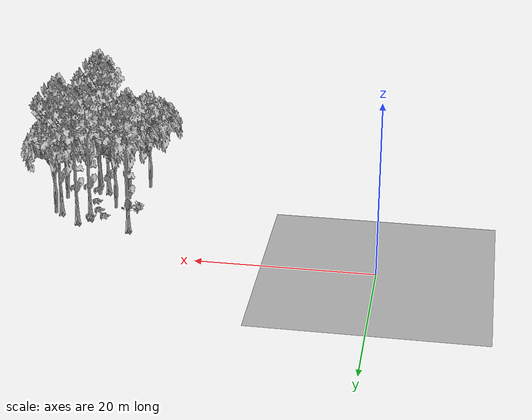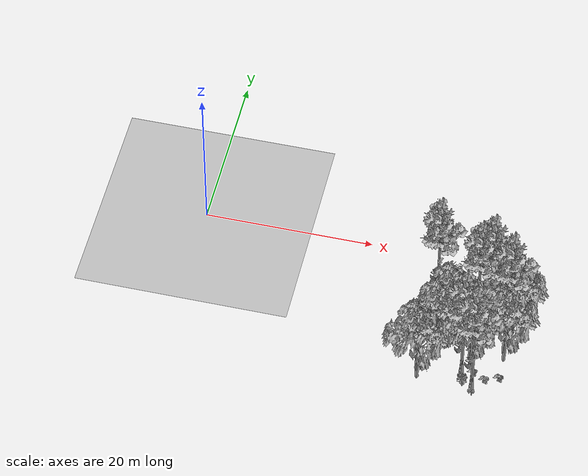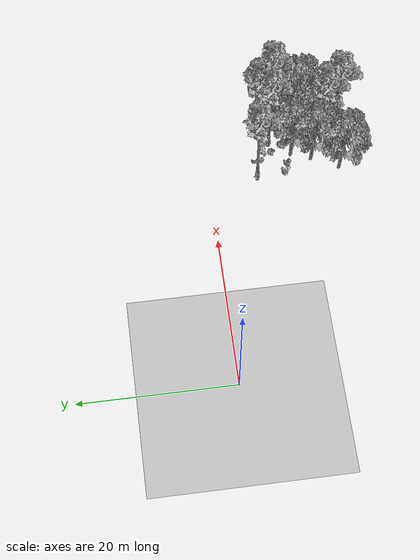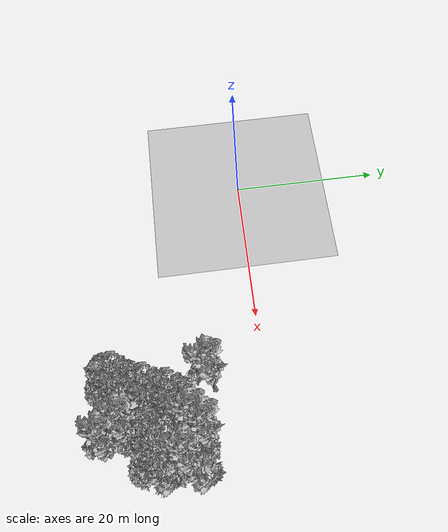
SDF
<sdf version="1.7">
 <world name="default">
  <model name="ground_plane">
   <static>1</static>
   <link name="link">
    <collision name="collision">
     <pose>-50 0 0 0 -0 0</pose>
     <geometry><plane><normal>0 0 1</normal><size>80 80</size></plane></geometry>
     <surface><contact><ode><min_depth>0.01</min_depth><max_vel>0</max_vel></ode></contact></surface>
    </collision>
    <visual name="grass">
     <cast_shadows>0</cast_shadows>
     <geometry>
      <mesh>
       <scale>0.46714285714285714 0.46714285714285714 0.1</scale>
       <uri>file://grass_plane/meshes/grass_plane.dae</uri>
      </mesh>
     </geometry>
    </visual>
   </link>
  </model>
  <model name="Tree 23">
   <static>1</static>
   <pose>35.221146484826804 -17.699953607041667 0 1.57079 -0 0</pose>
   <link name="link">
    <collision name="collision">
     <geometry><mesh><scale>3.5 5 3.5</scale><uri>model://tree_9/meshes/tree_9.obj</uri></mesh></geometry>
    </collision>
    <visual name="visual">
     <geometry><mesh><scale>3.5 5 3.5</scale><uri>model://tree_9/meshes/tree_9.obj</uri></mesh></geometry>
    </visual>
   </link>
  </model>
  <model name="Tree 33">
   <static>1</static>
   <pose>33.70613209654823 -15.851848451742086 0 1.57079 -0 0</pose>
   <link name="link">
    <collision name="collision">
     <geometry><mesh><scale>3.5 5 3.5</scale><uri>model://tree_9/meshes/tree_9.obj</uri></mesh></geometry>
    </collision>
    <visual name="visual">
     <geometry><mesh><scale>3.5 5 3.5</scale><uri>model://tree_9/meshes/tree_9.obj</uri></mesh></geometry>
    </visual>
   </link>
  </model>
  <model name="Tree 38">
   <static>1</static>
   <pose>30.601486647155355 -13.957409782659724 0 1.57079 -0 0</pose>
   <link name="link">
    <collision name="collision">
     <geometry><mesh><scale>3.5 5 3.5</scale><uri>model://tree_2/meshes/tree_2.obj</uri></mesh></geometry>
    </collision>
    <visual name="visual">
     <geometry><mesh><scale>3.5 5 3.5</scale><uri>model://tree_2/meshes/tree_2.obj</uri></mesh></geometry>
    </visual>
   </link>
  </model>
  <model name="Tree 142">
   <static>1</static>
   <pose>34.080236983721264 -8.682986408394527 0 1.57079 -0 0</pose>
   <link name="link">
    <collision name="collision">
     <geometry><mesh><scale>3.5 5 3.5</scale><uri>model://tree_9/meshes/tree_9.obj</uri></mesh></geometry>
    </collision>
    <visual name="visual">
     <geometry><mesh><scale>3.5 5 3.5</scale><uri>model://tree_9/meshes/tree_9.obj</uri></mesh></geometry>
    </visual>
   </link>
  </model>
  <model name="Tree 155">
   <static>1</static>
   <pose>35.293229303188156 -7.474615139393002 0 1.57079 -0 0</pose>
   <link name="link">
    <collision name="collision">
     <geometry><mesh><scale>3.5 5 3.5</scale><uri>model://tree_9/meshes/tree_9.obj</uri></mesh></geometry>
    </collision>
    <visual name="visual">
     <geometry><mesh><scale>3.5 5 3.5</scale><uri>model://tree_9/meshes/tree_9.obj</uri></mesh></geometry>
    </visual>
   </link>
  </model>
  <model name="Tree 299">
   <static>1</static>
   <pose>31.583565709617787 -11.35100876882192 0 1.57079 -0 0</pose>
   <link name="link">
    <collision name="collision">
     <geometry><mesh><scale>3.5 5 3.5</scale><uri>model://tree_2/meshes/tree_2.obj</uri></mesh></geometry>
    </collision>
    <visual name="visual">
     <geometry><mesh><scale>3.5 5 3.5</scale><uri>model://tree_2/meshes/tree_2.obj</uri></mesh></geometry>
    </visual>
   </link>
  </model>
  <model name="Tree 304">
   <static>1</static>
   <pose>38.191930301366384 -9.009848890088172 0 1.57079 -0 0</pose>
   <link name="link">
    <collision name="collision">
     <geometry><mesh><scale>3.5 5 3.5</scale><uri>model://tree_2/meshes/tree_2.obj</uri></mesh></geometry>
    </collision>
    <visual name="visual">
     <geometry><mesh><scale>3.5 5 3.5</scale><uri>model://tree_2/meshes/tree_2.obj</uri></mesh></geometry>
    </visual>
   </link>
  </model>
  <model name="Tree 399">
   <static>1</static>
   <pose>37.77106093558325 -9.50035511624258 0 1.57079 -0 0</pose>
   <link name="link">
    <collision name="collision">
     <geometry><mesh><scale>3.5 5 3.5</scale><uri>model://tree_9/meshes/tree_9.obj</uri></mesh></geometry>
    </collision>
    <visual name="visual">
     <geometry><mesh><scale>3.5 5 3.5</scale><uri>model://tree_9/meshes/tree_9.obj</uri></mesh></geometry>
    </visual>
   </link>
  </model>
  <model name="Tree 405">
   <static>1</static>
   <pose>37.92757929693791 -12.962336499677587 0 1.57079 -0 0</pose>
   <link name="link">
    <collision name="collision">
     <geometry><mesh><scale>3.5 5 3.5</scale><uri>model://tree_2/meshes/tree_2.obj</uri></mesh></geometry>
    </collision>
    <visual name="visual">
     <geometry><mesh><scale>3.5 5 3.5</scale><uri>model://tree_2/meshes/tree_2.obj</uri></mesh></geometry>
    </visual>
   </link>
  </model>
  <model name="Tree 577">
   <static>1</static>
   <pose>28.81396044457361 -17.463019854190716 0 1.57079 -0 0</pose>
   <link name="link">
    <collision name="collision">
     <geometry><mesh><scale>3.5 5 3.5</scale><uri>model://tree_2/meshes/tree_2.obj</uri></mesh></geometry>
    </collision>
    <visual name="visual">
     <geometry><mesh><scale>3.5 5 3.5</scale><uri>model://tree_2/meshes/tree_2.obj</uri></mesh></geometry>
    </visual>
   </link>
  </model>
  <model name="Tree 622">
   <static>1</static>
   <pose>34.35741426505291 -14.564022164621385 0 1.57079 -0 0</pose>
   <link name="link">
    <collision name="collision">
     <geometry><mesh><scale>3.5 5 3.5</scale><uri>model://tree_2/meshes/tree_2.obj</uri></mesh></geometry>
    </collision>
    <visual name="visual">
     <geometry><mesh><scale>3.5 5 3.5</scale><uri>model://tree_2/meshes/tree_2.obj</uri></mesh></geometry>
    </visual>
   </link>
  </model>
  <model name="Tree 639">
   <static>1</static>
   <pose>29.02431534305377 -6.460082581377655 0 1.57079 -0 0</pose>
   <link name="link">
    <collision name="collision">
     <geometry><mesh><scale>3.5 5 3.5</scale><uri>model://tree_9/meshes/tree_9.obj</uri></mesh></geometry>
    </collision>
    <visual name="visual">
     <geometry><mesh><scale>3.5 5 3.5</scale><uri>model://tree_9/meshes/tree_9.obj</uri></mesh></geometry>
    </visual>
   </link>
  </model>
  <model name="Bush 15">
   <static>1</static>
   <pose>33.44014369497967 -10.254939725607475 0 1.57079 -0 0</pose>
   <link name="link">
    <collision name="collision">
     <geometry><mesh><scale>2 2 2</scale><uri>model://bush_2/meshes/bush_2.obj</uri></mesh></geometry>
     <surface><contact><collide_without_contact>false</collide_without_contact></contact></surface>
    </collision>
    <visual name="visual">
     <geometry><mesh><scale>2 2 2</scale><uri>model://bush_2/meshes/bush_2.obj</uri></mesh></geometry>
    </visual>
   </link>
  </model>
  <model name="Bush 142">
   <static>1</static>
   <pose>32.42881538954508 -8.842865110967708 0 1.57079 -0 0</pose>
   <link name="link">
    <collision name="collision">
     <geometry><mesh><scale>2 2 2</scale><uri>model://bush_2/meshes/bush_2.obj</uri></mesh></geometry>
     <surface><contact><collide_without_contact>false</collide_without_contact></contact></surface>
    </collision>
    <visual name="visual">
     <geometry><mesh><scale>2 2 2</scale><uri>model://bush_2/meshes/bush_2.obj</uri></mesh></geometry>
    </visual>
   </link>
  </model>
  <model name="Bush 159">
   <static>1</static>
   <pose>37.9509177187674 -15.580383635306632 0 1.57079 -0 0</pose>
   <link name="link">
    <collision name="collision">
     <geometry><mesh><scale>2 2 2</scale><uri>model://bush_2/meshes/bush_2.obj</uri></mesh></geometry>
     <surface><contact><collide_without_contact>false</collide_without_contact></contact></surface>
    </collision>
    <visual name="visual">
     <geometry><mesh><scale>2 2 2</scale><uri>model://bush_2/meshes/bush_2.obj</uri></mesh></geometry>
    </visual>
   </link>
  </model>
  <model name="Bush 165">
   <static>1</static>
   <pose>30.012918644963634 -10.669491408964298 0 1.57079 -0 0</pose>
   <link name="link">
    <collision name="collision">
     <geometry><mesh><scale>2 2 2</scale><uri>model://bush_4/meshes/bush_4.obj</uri></mesh></geometry>
     <surface><contact><collide_without_contact>false</collide_without_contact></contact></surface>
    </collision>
    <visual name="visual">
     <geometry><mesh><scale>2 2 2</scale><uri>model://bush_4/meshes/bush_4.obj</uri></mesh></geometry>
    </visual>
   </link>
  </model>
  <model name="Bush 264">
   <static>1</static>
   <pose>34.12621822916476 -17.494224064521006 0 1.57079 -0 0</pose>
   <link name="link">
    <collision name="collision">
     <geometry><mesh><scale>2 2 2</scale><uri>model://bush_5/meshes/bush_5.obj</uri></mesh></geometry>
     <surface><contact><collide_without_contact>false</collide_without_contact></contact></surface>
    </collision>
    <visual name="visual">
     <geometry><mesh><scale>2 2 2</scale><uri>model://bush_5/meshes/bush_5.obj</uri></mesh></geometry>
    </visual>
   </link>
  </model>
  <model name="Bush 284">
   <static>1</static>
   <pose>36.3893689719084 -16.18136428934502 0 1.57079 -0 0</pose>
   <link name="link">
    <collision name="collision">
     <geometry><mesh><scale>2 2 2</scale><uri>model://bush_2/meshes/bush_2.obj</uri></mesh></geometry>
     <surface><contact><collide_without_contact>false</collide_without_contact></contact></surface>
    </collision>
    <visual name="visual">
     <geometry><mesh><scale>2 2 2</scale><uri>model://bush_2/meshes/bush_2.obj</uri></mesh></geometry>
    </visual>
   </link>
  </model>
  <model name="Bush 380">
   <static>1</static>
   <pose>28.827791017352425 -10.10982446288736 0 1.57079 -0 0</pose>
   <link name="link">
    <collision name="collision">
     <geometry><mesh><scale>2 2 2</scale><uri>model://bush_0/meshes/bush_0.obj</uri></mesh></geometry>
     <surface><contact><collide_without_contact>false</collide_without_contact></contact></surface>
    </collision>
    <visual name="visual">
     <geometry><mesh><scale>2 2 2</scale><uri>model://bush_0/meshes/bush_0.obj</uri></mesh></geometry>
    </visual>
   </link>
  </model>
  <model name="Bush 419">
   <static>1</static>
   <pose>34.08849523870656 -16.933722378269167 0 1.57079 -0 0</pose>
   <link name="link">
    <collision name="collision">
     <geometry><mesh><scale>2 2 2</scale><uri>model://bush_5/meshes/bush_5.obj</uri></mesh></geometry>
     <surface><contact><collide_without_contact>false</collide_without_contact></contact></surface>
    </collision>
    <visual name="visual">
     <geometry><mesh><scale>2 2 2</scale><uri>model://bush_5/meshes/bush_5.obj</uri></mesh></geometry>
    </visual>
   </link>
  </model>
  <model name="Bush 542">
   <static>1</static>
   <pose>34.940529045207924 -15.414882100561684 0 1.57079 -0 0</pose>
   <link name="link">
    <collision name="collision">
     <geometry><mesh><scale>2 2 2</scale><uri>model://bush_2/meshes/bush_2.obj</uri></mesh></geometry>
     <surface><contact><collide_without_contact>false</collide_without_contact></contact></surface>
    </collision>
    <visual name="visual">
     <geometry><mesh><scale>2 2 2</scale><uri>model://bush_2/meshes/bush_2.obj</uri></mesh></geometry>
    </visual>
   </link>
  </model>
  <model name="Bush 556">
   <static>1</static>
   <pose>34.04048710834432 -8.492903291359852 0 1.57079 -0 0</pose>
   <link name="link">
    <collision name="collision">
     <geometry><mesh><scale>2 2 2</scale><uri>model://bush_2/meshes/bush_2.obj</uri></mesh></geometry>
     <surface><contact><collide_without_contact>false</collide_without_contact></contact></surface>
    </collision>
    <visual name="visual">
     <geometry><mesh><scale>2 2 2</scale><uri>model://bush_2/meshes/bush_2.obj</uri></mesh></geometry>
    </visual>
   </link>
  </model>
  <model name="Bush 582">
   <static>1</static>
   <pose>34.26295160538538 -12.461692555024566 0 1.57079 -0 0</pose>
   <link name="link">
    <collision name="collision">
     <geometry><mesh><scale>2 2 2</scale><uri>model://bush_2/meshes/bush_2.obj</uri></mesh></geometry>
     <surface><contact><collide_without_contact>false</collide_without_contact></contact></surface>
    </collision>
    <visual name="visual">
     <geometry><mesh><scale>2 2 2</scale><uri>model://bush_2/meshes/bush_2.obj</uri></mesh></geometry>
    </visual>
   </link>
  </model>
 </world>
</sdf>
